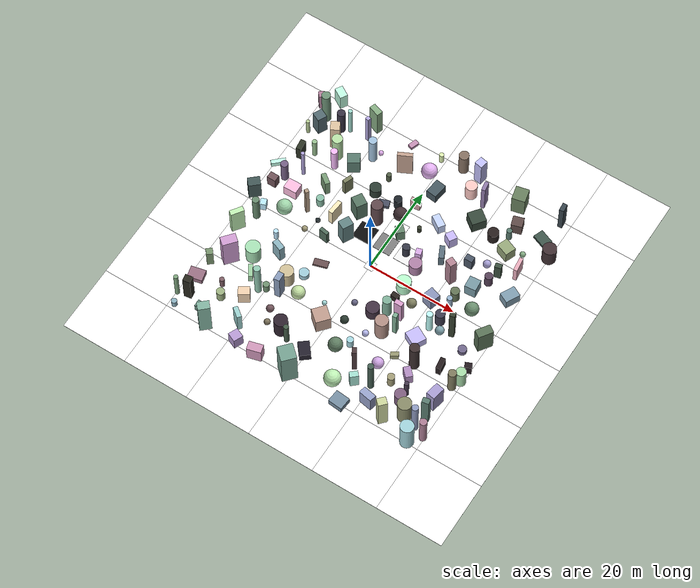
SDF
<sdf version="1.9">
 <world name="iris_runway">
  <physics name="1ms" type="ignore">
   <max_step_size>0.001</max_step_size>
   <real_time_factor>1.0</real_time_factor>
  </physics>
  <plugin filename="gz-sim-physics-system" name="gz::sim::systems::Physics"/>
  <plugin filename="gz-sim-sensors-system" name="gz::sim::systems::Sensors">
   <render_engine>ogre2</render_engine>
   <headless_rendering>false</headless_rendering>
  </plugin>
  <plugin filename="gz-sim-user-commands-system" name="gz::sim::systems::UserCommands"/>
  <plugin filename="gz-sim-scene-broadcaster-system" name="gz::sim::systems::SceneBroadcaster"/>
  <scene><ambient>1.0 1.0 1.0</ambient><background>0.8 0.8 0.8</background></scene>
  <light type="directional" name="sun">
   <pose>0 0 10 0 0 0</pose>
   <diffuse>0.8 0.8 0.8 1</diffuse>
   <specular>0.8 0.8 0.8 1</specular>
   <attenuation>
    <range>1000</range>
    <constant>0.9</constant>
    <linear>0.01</linear>
    <quadratic>0.001</quadratic>
   </attenuation>
   <direction>-0.5 0.1 -0.9</direction>
  </light>
  <include><uri>model://vio_ground</uri></include>
  <include><uri>model://vio_feature_field</uri></include>
  <model name="greyscale_ramp">
   <static>true</static>
   <link name="link">
    <visual name="dark">
     <pose>-5 6 0.05 0 0 0</pose>
     <geometry><box><size>4 4 0.1</size></box></geometry>
     <material><ambient>0.05 0.05 0.05 1</ambient><diffuse>0.05 0.05 0.05 1</diffuse></material>
    </visual>
    <visual name="mid">
     <pose>0 6 0.05 0 0 0</pose>
     <geometry><box><size>4 4 0.1</size></box></geometry>
     <material><ambient>0.50 0.50 0.50 1</ambient><diffuse>0.50 0.50 0.50 1</diffuse></material>
    </visual>
    <visual name="textured">
     <pose>0 10 0.05 0 0 0</pose>
     <geometry><box><size>4 4 0.1</size></box></geometry>
     <material>
      <ambient>1 1 1 1</ambient>
      <diffuse>1 1 1 1</diffuse>
      <pbr>
       <metal>
        <albedo_map>model://runway/materials/textures/runway.png</albedo_map>
        <roughness>0.6</roughness>
        <metalness>0</metalness>
       </metal>
      </pbr>
     </material>
    </visual>
    <visual name="light">
     <pose>5 6 0.05 0 0 0</pose>
     <geometry><box><size>4 4 0.1</size></box></geometry>
     <material><ambient>0.95 0.95 0.95 1</ambient><diffuse>0.95 0.95 0.95 1</diffuse></material>
    </visual>
   </link>
  </model>
  <model name="probe_cam_low">
   <static>true</static>
   <pose>0 0 0.215 0 0 0</pose>
   <link name="link">
    <sensor name="cam" type="camera">
     <pose>0 0 0 0 1.5707963 0</pose>
     <always_on>1</always_on>
     <update_rate>5</update_rate>
     <topic>probe/image_low</topic>
     <camera>
      <horizontal_fov>1.3963</horizontal_fov>
      <image><width>640</width><height>400</height><format>L8</format></image>
      <clip><near>0.05</near><far>500</far></clip>
     </camera>
    </sensor>
   </link>
  </model>
  <model name="probe_cam">
   <static>true</static>
   <pose>0 0 15 0 0 0</pose>
   <link name="link">
    <sensor name="cam" type="camera">
     <pose>0 0 0 0 1.5707963 0</pose>
     <always_on>1</always_on>
     <update_rate>5</update_rate>
     <topic>probe/image</topic>
     <camera>
      <horizontal_fov>1.3963</horizontal_fov>
      <image><width>640</width><height>400</height><format>L8</format></image>
      <clip><near>0.05</near><far>500</far></clip>
     </camera>
    </sensor>
   </link>
  </model>
 </world>
</sdf>

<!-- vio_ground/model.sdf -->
<sdf version="1.9">
  <model name="vio_ground">
    <static>true</static>
    <link name="link">
      <visual name="g0_0">
        <pose>-37.50 -37.50 0.01 0 0 0</pose>
        <cast_shadows>false</cast_shadows>
        <geometry><box><size>15.00 15.00 0.02</size></box></geometry>
        <material>
          <ambient>1 1 1 1</ambient>
          <diffuse>1 1 1 1</diffuse>
          <specular>0.05 0.05 0.05 1</specular>
          <pbr><metal>
            <albedo_map>model://vio_ground/materials/textures/ground0.png</albedo_map>
            <roughness>0.9</roughness>
            <metalness>0</metalness>
          </metal></pbr>
        </material>
      </visual>
      <visual name="g0_1">
        <pose>-37.50 -22.50 0.01 0 0 0</pose>
        <cast_shadows>false</cast_shadows>
        <geometry><box><size>15.00 15.00 0.02</size></box></geometry>
        <material>
          <ambient>1 1 1 1</ambient>
          <diffuse>1 1 1 1</diffuse>
          <specular>0.05 0.05 0.05 1</specular>
          <pbr><metal>
            <albedo_map>model://vio_ground/materials/textures/ground2.png</albedo_map>
            <roughness>0.9</roughness>
            <metalness>0</metalness>
          </metal></pbr>
        </material>
      </visual>
      <visual name="g0_2">
        <pose>-37.50 -7.50 0.01 0 0 0</pose>
        <cast_shadows>false</cast_shadows>
        <geometry><box><size>15.00 15.00 0.02</size></box></geometry>
        <material>
          <ambient>1 1 1 1</ambient>
          <diffuse>1 1 1 1</diffuse>
          <specular>0.05 0.05 0.05 1</specular>
          <pbr><metal>
            <albedo_map>model://vio_ground/materials/textures/ground0.png</albedo_map>
            <roughness>0.9</roughness>
            <metalness>0</metalness>
          </metal></pbr>
        </material>
      </visual>
      <visual name="g0_3">
        <pose>-37.50 7.50 0.01 0 0 0</pose>
        <cast_shadows>false</cast_shadows>
        <geometry><box><size>15.00 15.00 0.02</size></box></geometry>
        <material>
          <ambient>1 1 1 1</ambient>
          <diffuse>1 1 1 1</diffuse>
          <specular>0.05 0.05 0.05 1</specular>
          <pbr><metal>
            <albedo_map>model://vio_ground/materials/textures/ground2.png</albedo_map>
            <roughness>0.9</roughness>
            <metalness>0</metalness>
          </metal></pbr>
        </material>
      </visual>
      <visual name="g0_4">
        <pose>-37.50 22.50 0.01 0 0 0</pose>
        <cast_shadows>false</cast_shadows>
        <geometry><box><size>15.00 15.00 0.02</size></box></geometry>
        <material>
          <ambient>1 1 1 1</ambient>
          <diffuse>1 1 1 1</diffuse>
          <specular>0.05 0.05 0.05 1</specular>
          <pbr><metal>
            <albedo_map>model://vio_ground/materials/textures/ground0.png</albedo_map>
            <roughness>0.9</roughness>
            <metalness>0</metalness>
          </metal></pbr>
        </material>
      </visual>
      <visual name="g0_5">
        <pose>-37.50 37.50 0.01 0 0 0</pose>
        <cast_shadows>false</cast_shadows>
        <geometry><box><size>15.00 15.00 0.02</size></box></geometry>
        <material>
          <ambient>1 1 1 1</ambient>
          <diffuse>1 1 1 1</diffuse>
          <specular>0.05 0.05 0.05 1</specular>
          <pbr><metal>
            <albedo_map>model://vio_ground/materials/textures/ground2.png</albedo_map>
            <roughness>0.9</roughness>
            <metalness>0</metalness>
          </metal></pbr>
        </material>
      </visual>
      <visual name="g1_0">
        <pose>-22.50 -37.50 0.01 0 0 0</pose>
        <cast_shadows>false</cast_shadows>
        <geometry><box><size>15.00 15.00 0.02</size></box></geometry>
        <material>
          <ambient>1 1 1 1</ambient>
          <diffuse>1 1 1 1</diffuse>
          <specular>0.05 0.05 0.05 1</specular>
          <pbr><metal>
            <albedo_map>model://vio_ground/materials/textures/ground1.png</albedo_map>
            <roughness>0.9</roughness>
            <metalness>0</metalness>
          </metal></pbr>
        </material>
      </visual>
      <visual name="g1_1">
        <pose>-22.50 -22.50 0.01 0 0 0</pose>
        <cast_shadows>false</cast_shadows>
        <geometry><box><size>15.00 15.00 0.02</size></box></geometry>
        <material>
          <ambient>1 1 1 1</ambient>
          <diffuse>1 1 1 1</diffuse>
          <specular>0.05 0.05 0.05 1</specular>
          <pbr><metal>
            <albedo_map>model://vio_ground/materials/textures/ground3.png</albedo_map>
            <roughness>0.9</roughness>
            <metalness>0</metalness>
          </metal></pbr>
        </material>
      </visual>
      <visual name="g1_2">
        <pose>-22.50 -7.50 0.01 0 0 0</pose>
        <cast_shadows>false</cast_shadows>
        <geometry><box><size>15.00 15.00 0.02</size></box></geometry>
        <material>
          <ambient>1 1 1 1</ambient>
          <diffuse>1 1 1 1</diffuse>
          <specular>0.05 0.05 0.05 1</specular>
          <pbr><metal>
            <albedo_map>model://vio_ground/materials/textures/ground1.png</albedo_map>
            <roughness>0.9</roughness>
            <metalness>0</metalness>
          </metal></pbr>
        </material>
      </visual>
      <visual name="g1_3">
        <pose>-22.50 7.50 0.01 0 0 0</pose>
        <cast_shadows>false</cast_shadows>
        <geometry><box><size>15.00 15.00 0.02</size></box></geometry>
        <material>
          <ambient>1 1 1 1</ambient>
          <diffuse>1 1 1 1</diffuse>
          <specular>0.05 0.05 0.05 1</specular>
          <pbr><metal>
            <albedo_map>model://vio_ground/materials/textures/ground3.png</albedo_map>
            <roughness>0.9</roughness>
            <metalness>0</metalness>
          </metal></pbr>
        </material>
      </visual>
      <visual name="g1_4">
        <pose>-22.50 22.50 0.01 0 0 0</pose>
        <cast_shadows>false</cast_shadows>
        <geometry><box><size>15.00 15.00 0.02</size></box></geometry>
        <material>
          <ambient>1 1 1 1</ambient>
          <diffuse>1 1 1 1</diffuse>
          <specular>0.05 0.05 0.05 1</specular>
          <pbr><metal>
            <albedo_map>model://vio_ground/materials/textures/ground1.png</albedo_map>
            <roughness>0.9</roughness>
            <metalness>0</metalness>
          </metal></pbr>
        </material>
      </visual>
      <visual name="g1_5">
        <pose>-22.50 37.50 0.01 0 0 0</pose>
        <cast_shadows>false</cast_shadows>
        <geometry><box><size>15.00 15.00 0.02</size></box></geometry>
        <material>
          <ambient>1 1 1 1</ambient>
          <diffuse>1 1 1 1</diffuse>
          <specular>0.05 0.05 0.05 1</specular>
          <pbr><metal>
            <albedo_map>model://vio_ground/materials/textures/ground3.png</albedo_map>
            <roughness>0.9</roughness>
            <metalness>0</metalness>
          </metal></pbr>
        </material>
      </visual>
      <visual name="g2_0">
        <pose>-7.50 -37.50 0.01 0 0 0</pose>
        <cast_shadows>false</cast_shadows>
        <geometry><box><size>15.00 15.00 0.02</size></box></geometry>
        <material>
          <ambient>1 1 1 1</ambient>
          <diffuse>1 1 1 1</diffuse>
          <specular>0.05 0.05 0.05 1</specular>
          <pbr><metal>
            <albedo_map>model://vio_ground/materials/textures/ground2.png</albedo_map>
            <roughness>0.9</roughness>
            <metalness>0</metalness>
          </metal></pbr>
        </material>
      </visual>
      <visual name="g2_1">
        <pose>-7.50 -22.50 0.01 0 0 0</pose>
        <cast_shadows>false</cast_shadows>
        <geometry><box><size>15.00 15.00 0.02</size></box></geometry>
        <material>
          <ambient>1 1 1 1</ambient>
          <diffuse>1 1 1 1</diffuse>
          <specular>0.05 0.05 0.05 1</specular>
          <pbr><metal>
            <albedo_map>model://vio_ground/materials/textures/ground0.png</albedo_map>
            <roughness>0.9</roughness>
            <metalness>0</metalness>
          </metal></pbr>
        </material>
      </visual>
      <visual name="g2_2">
        <pose>-7.50 -7.50 0.01 0 0 0</pose>
        <cast_shadows>false</cast_shadows>
        <geometry><box><size>15.00 15.00 0.02</size></box></geometry>
        <material>
          <ambient>1 1 1 1</ambient>
          <diffuse>1 1 1 1</diffuse>
          <specular>0.05 0.05 0.05 1</specular>
          <pbr><metal>
            <albedo_map>model://vio_ground/materials/textures/ground2.png</albedo_map>
            <roughness>0.9</roughness>
            <metalness>0</metalness>
          </metal></pbr>
        </material>
      </visual>
      <visual name="g2_3">
        <pose>-7.50 7.50 0.01 0 0 0</pose>
        <cast_shadows>false</cast_shadows>
        <geometry><box><size>15.00 15.00 0.02</size></box></geometry>
        <material>
          <ambient>1 1 1 1</ambient>
          <diffuse>1 1 1 1</diffuse>
          <specular>0.05 0.05 0.05 1</specular>
          <pbr><metal>
            <albedo_map>model://vio_ground/materials/textures/ground0.png</albedo_map>
            <roughness>0.9</roughness>
            <metalness>0</metalness>
          </metal></pbr>
        </material>
      </visual>
      <visual name="g2_4">
        <pose>-7.50 22.50 0.01 0 0 0</pose>
        <cast_shadows>false</cast_shadows>
        <geometry><box><size>15.00 15.00 0.02</size></box></geometry>
        <material>
          <ambient>1 1 1 1</ambient>
          <diffuse>1 1 1 1</diffuse>
          <specular>0.05 0.05 0.05 1</specular>
          <pbr><metal>
            <albedo_map>model://vio_ground/materials/textures/ground2.png</albedo_map>
            <roughness>0.9</roughness>
            <metalness>0</metalness>
          </metal></pbr>
        </material>
      </visual>
      <visual name="g2_5">
        <pose>-7.50 37.50 0.01 0 0 0</pose>
        <cast_shadows>false</cast_shadows>
        <geometry><box><size>15.00 15.00 0.02</size></box></geometry>
        <material>
          <ambient>1 1 1 1</ambient>
          <diffuse>1 1 1 1</diffuse>
          <specular>0.05 0.05 0.05 1</specular>
          <pbr><metal>
            <albedo_map>model://vio_ground/materials/textures/ground0.png</albedo_map>
            <roughness>0.9</roughness>
            <metalness>0</metalness>
          </metal></pbr>
        </material>
      </visual>
      <visual name="g3_0">
        <pose>7.50 -37.50 0.01 0 0 0</pose>
        <cast_shadows>false</cast_shadows>
        <geometry><box><size>15.00 15.00 0.02</size></box></geometry>
        <material>
          <ambient>1 1 1 1</ambient>
          <diffuse>1 1 1 1</diffuse>
          <specular>0.05 0.05 0.05 1</specular>
          <pbr><metal>
            <albedo_map>model://vio_ground/materials/textures/ground3.png</albedo_map>
            <roughness>0.9</roughness>
            <metalness>0</metalness>
          </metal></pbr>
        </material>
      </visual>
      <visual name="g3_1">
        <pose>7.50 -22.50 0.01 0 0 0</pose>
        <cast_shadows>false</cast_shadows>
        <geometry><box><size>15.00 15.00 0.02</size></box></geometry>
        <material>
          <ambient>1 1 1 1</ambient>
          <diffuse>1 1 1 1</diffuse>
          <specular>0.05 0.05 0.05 1</specular>
          <pbr><metal>
            <albedo_map>model://vio_ground/materials/textures/ground1.png</albedo_map>
            <roughness>0.9</roughness>
            <metalness>0</metalness>
          </metal></pbr>
        </material>
      </visual>
      <visual name="g3_2">
        <pose>7.50 -7.50 0.01 0 0 0</pose>
        <cast_shadows>false</cast_shadows>
        <geometry><box><size>15.00 15.00 0.02</size></box></geometry>
        <material>
          <ambient>1 1 1 1</ambient>
          <diffuse>1 1 1 1</diffuse>
          <specular>0.05 0.05 0.05 1</specular>
          <pbr><metal>
            <albedo_map>model://vio_ground/materials/textures/ground3.png</albedo_map>
            <roughness>0.9</roughness>
            <metalness>0</metalness>
          </metal></pbr>
        </material>
      </visual>
      <visual name="g3_3">
        <pose>7.50 7.50 0.01 0 0 0</pose>
        <cast_shadows>false</cast_shadows>
        <geometry><box><size>15.00 15.00 0.02</size></box></geometry>
        <material>
          <ambient>1 1 1 1</ambient>
          <diffuse>1 1 1 1</diffuse>
          <specular>0.05 0.05 0.05 1</specular>
          <pbr><metal>
            <albedo_map>model://vio_ground/materials/textures/ground1.png</albedo_map>
            <roughness>0.9</roughness>
            <metalness>0</metalness>
          </metal></pbr>
        </material>
      </visual>
      <visual name="g3_4">
        <pose>7.50 22.50 0.01 0 0 0</pose>
        <cast_shadows>false</cast_shadows>
        <geometry><box><size>15.00 15.00 0.02</size></box></geometry>
        <material>
          <ambient>1 1 1 1</ambient>
          <diffuse>1 1 1 1</diffuse>
          <specular>0.05 0.05 0.05 1</specular>
          <pbr><metal>
            <albedo_map>model://vio_ground/materials/textures/ground3.png</albedo_map>
            <roughness>0.9</roughness>
            <metalness>0</metalness>
          </metal></pbr>
        </material>
      </visual>
      <visual name="g3_5">
        <pose>7.50 37.50 0.01 0 0 0</pose>
        <cast_shadows>false</cast_shadows>
        <geometry><box><size>15.00 15.00 0.02</size></box></geometry>
        <material>
          <ambient>1 1 1 1</ambient>
          <diffuse>1 1 1 1</diffuse>
          <specular>0.05 0.05 0.05 1</specular>
          <pbr><metal>
            <albedo_map>model://vio_ground/materials/textures/ground1.png</albedo_map>
            <roughness>0.9</roughness>
            <metalness>0</metalness>
          </metal></pbr>
        </material>
      </visual>
      <visual name="g4_0">
        <pose>22.50 -37.50 0.01 0 0 0</pose>
        <cast_shadows>false</cast_shadows>
        <geometry><box><size>15.00 15.00 0.02</size></box></geometry>
        <material>
          <ambient>1 1 1 1</ambient>
          <diffuse>1 1 1 1</diffuse>
          <specular>0.05 0.05 0.05 1</specular>
          <pbr><metal>
            <albedo_map>model://vio_ground/materials/textures/ground0.png</albedo_map>
            <roughness>0.9</roughness>
            <metalness>0</metalness>
          </metal></pbr>
        </material>
      </visual>
      <visual name="g4_1">
        <pose>22.50 -22.50 0.01 0 0 0</pose>
        <cast_shadows>false</cast_shadows>
        <geometry><box><size>15.00 15.00 0.02</size></box></geometry>
        <material>
          <ambient>1 1 1 1</ambient>
          <diffuse>1 1 1 1</diffuse>
          <specular>0.05 0.05 0.05 1</specular>
          <pbr><metal>
            <albedo_map>model://vio_ground/materials/textures/ground2.png</albedo_map>
            <roughness>0.9</roughness>
            <metalness>0</metalness>
          </metal></pbr>
        </material>
      </visual>
      <visual name="g4_2">
        <pose>22.50 -7.50 0.01 0 0 0</pose>
        <cast_shadows>false</cast_shadows>
        <geometry><box><size>15.00 15.00 0.02</size></box></geometry>
        <material>
          <ambient>1 1 1 1</ambient>
          <diffuse>1 1 1 1</diffuse>
          <specular>0.05 0.05 0.05 1</specular>
          <pbr><metal>
            <albedo_map>model://vio_ground/materials/textures/ground0.png</albedo_map>
            <roughness>0.9</roughness>
            <metalness>0</metalness>
          </metal></pbr>
        </material>
      </visual>
      <visual name="g4_3">
        <pose>22.50 7.50 0.01 0 0 0</pose>
        <cast_shadows>false</cast_shadows>
        <geometry><box><size>15.00 15.00 0.02</size></box></geometry>
        <material>
          <ambient>1 1 1 1</ambient>
          <diffuse>1 1 1 1</diffuse>
          <specular>0.05 0.05 0.05 1</specular>
          <pbr><metal>
            <albedo_map>model://vio_ground/materials/textures/ground2.png</albedo_map>
            <roughness>0.9</roughness>
            <metalness>0</metalness>
          </metal></pbr>
        </material>
      </visual>
      <visual name="g4_4">
        <pose>22.50 22.50 0.01 0 0 0</pose>
        <cast_shadows>false</cast_shadows>
        <geometry><box><size>15.00 15.00 0.02</size></box></geometry>
        <material>
          <ambient>1 1 1 1</ambient>
          <diffuse>1 1 1 1</diffuse>
          <specular>0.05 0.05 0.05 1</specular>
          <pbr><metal>
            <albedo_map>model://vio_ground/materials/textures/ground0.png</albedo_map>
            <roughness>0.9</roughness>
            <metalness>0</metalness>
          </metal></pbr>
        </material>
      </visual>
      <visual name="g4_5">
        <pose>22.50 37.50 0.01 0 0 0</pose>
        <cast_shadows>false</cast_shadows>
        <geometry><box><size>15.00 15.00 0.02</size></box></geometry>
        <material>
          <ambient>1 1 1 1</ambient>
          <diffuse>1 1 1 1</diffuse>
          <specular>0.05 0.05 0.05 1</specular>
          <pbr><metal>
            <albedo_map>model://vio_ground/materials/textures/ground2.png</albedo_map>
            <roughness>0.9</roughness>
            <metalness>0</metalness>
          </metal></pbr>
        </material>
      </visual>
      <visual name="g5_0">
        <pose>37.50 -37.50 0.01 0 0 0</pose>
        <cast_shadows>false</cast_shadows>
        <geometry><box><size>15.00 15.00 0.02</size></box></geometry>
        <material>
          <ambient>1 1 1 1</ambient>
          <diffuse>1 1 1 1</diffuse>
          <specular>0.05 0.05 0.05 1</specular>
          <pbr><metal>
            <albedo_map>model://vio_ground/materials/textures/ground1.png</albedo_map>
            <roughness>0.9</roughness>
            <metalness>0</metalness>
          </metal></pbr>
        </material>
      </visual>
      <visual name="g5_1">
        <pose>37.50 -22.50 0.01 0 0 0</pose>
        <cast_shadows>false</cast_shadows>
        <geometry><box><size>15.00 15.00 0.02</size></box></geometry>
        <material>
          <ambient>1 1 1 1</ambient>
          <diffuse>1 1 1 1</diffuse>
          <specular>0.05 0.05 0.05 1</specular>
          <pbr><metal>
            <albedo_map>model://vio_ground/materials/textures/ground3.png</albedo_map>
            <roughness>0.9</roughness>
            <metalness>0</metalness>
          </metal></pbr>
        </material>
      </visual>
      <visual name="g5_2">
        <pose>37.50 -7.50 0.01 0 0 0</pose>
        <cast_shadows>false</cast_shadows>
        <geometry><box><size>15.00 15.00 0.02</size></box></geometry>
        <material>
          <ambient>1 1 1 1</ambient>
          <diffuse>1 1 1 1</diffuse>
          <specular>0.05 0.05 0.05 1</specular>
          <pbr><metal>
            <albedo_map>model://vio_ground/materials/textures/ground1.png</albedo_map>
            <roughness>0.9</roughness>
            <metalness>0</metalness>
          </metal></pbr>
        </material>
      </visual>
      <visual name="g5_3">
        <pose>37.50 7.50 0.01 0 0 0</pose>
        <cast_shadows>false</cast_shadows>
        <geometry><box><size>15.00 15.00 0.02</size></box></geometry>
        <material>
          <ambient>1 1 1 1</ambient>
          <diffuse>1 1 1 1</diffuse>
          <specular>0.05 0.05 0.05 1</specular>
          <pbr><metal>
            <albedo_map>model://vio_ground/materials/textures/ground3.png</albedo_map>
            <roughness>0.9</roughness>
            <metalness>0</metalness>
          </metal></pbr>
        </material>
      </visual>
      <visual name="g5_4">
        <pose>37.50 22.50 0.01 0 0 0</pose>
        <cast_shadows>false</cast_shadows>
        <geometry><box><size>15.00 15.00 0.02</size></box></geometry>
        <material>
          <ambient>1 1 1 1</ambient>
          <diffuse>1 1 1 1</diffuse>
          <specular>0.05 0.05 0.05 1</specular>
          <pbr><metal>
            <albedo_map>model://vio_ground/materials/textures/ground1.png</albedo_map>
            <roughness>0.9</roughness>
            <metalness>0</metalness>
          </metal></pbr>
        </material>
      </visual>
      <visual name="g5_5">
        <pose>37.50 37.50 0.01 0 0 0</pose>
        <cast_shadows>false</cast_shadows>
        <geometry><box><size>15.00 15.00 0.02</size></box></geometry>
        <material>
          <ambient>1 1 1 1</ambient>
          <diffuse>1 1 1 1</diffuse>
          <specular>0.05 0.05 0.05 1</specular>
          <pbr><metal>
            <albedo_map>model://vio_ground/materials/textures/ground3.png</albedo_map>
            <roughness>0.9</roughness>
            <metalness>0</metalness>
          </metal></pbr>
        </material>
      </visual>
      <visual name="takeoff_pad">
        <pose>0 0 0.025 0 0 0</pose>
        <cast_shadows>false</cast_shadows>
        <geometry><box><size>2.00 2.00 0.01</size></box></geometry>
        <material>
          <ambient>1 1 1 1</ambient>
          <diffuse>1 1 1 1</diffuse>
          <specular>0.05 0.05 0.05 1</specular>
          <pbr><metal>
            <albedo_map>model://vio_ground/materials/textures/pad.png</albedo_map>
            <roughness>0.9</roughness>
            <metalness>0</metalness>
          </metal></pbr>
        </material>
      </visual>
    </link>
  </model>
</sdf>
